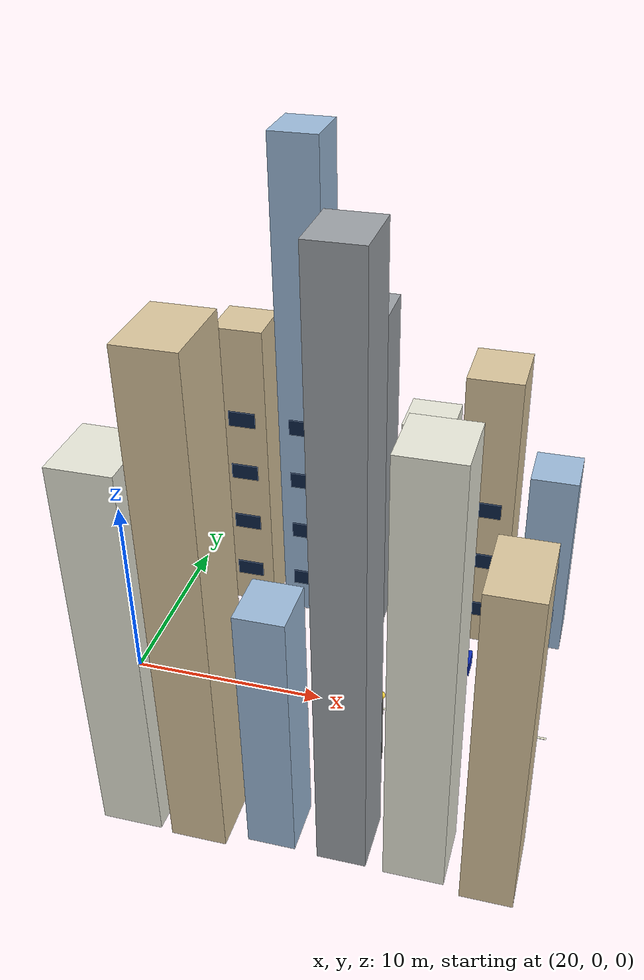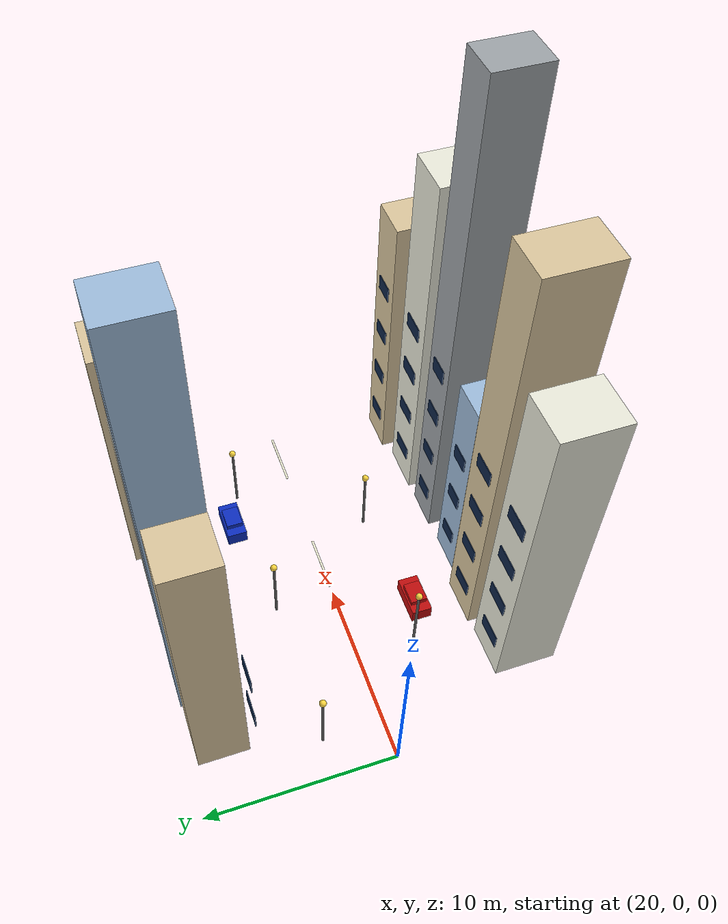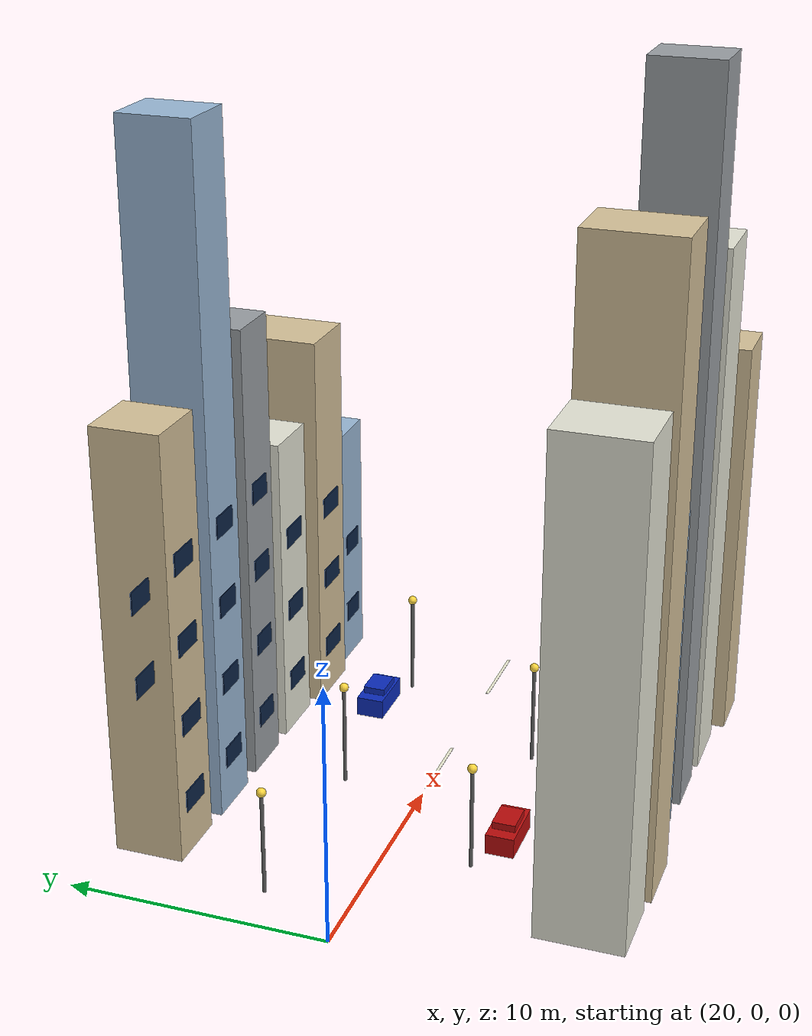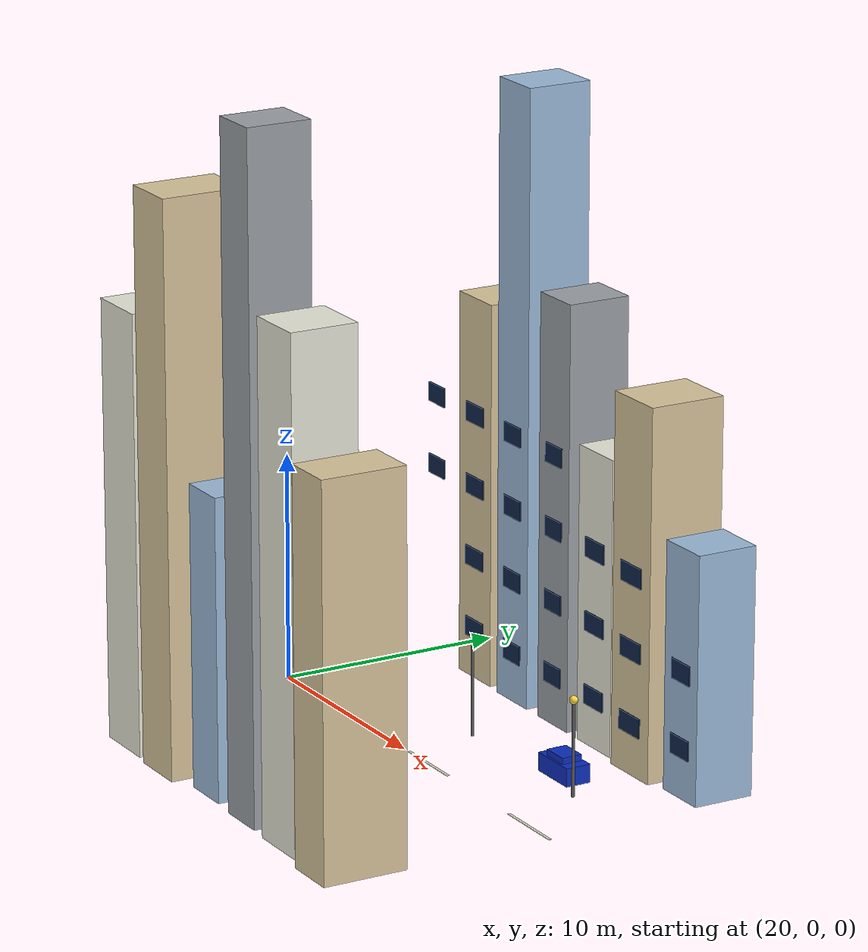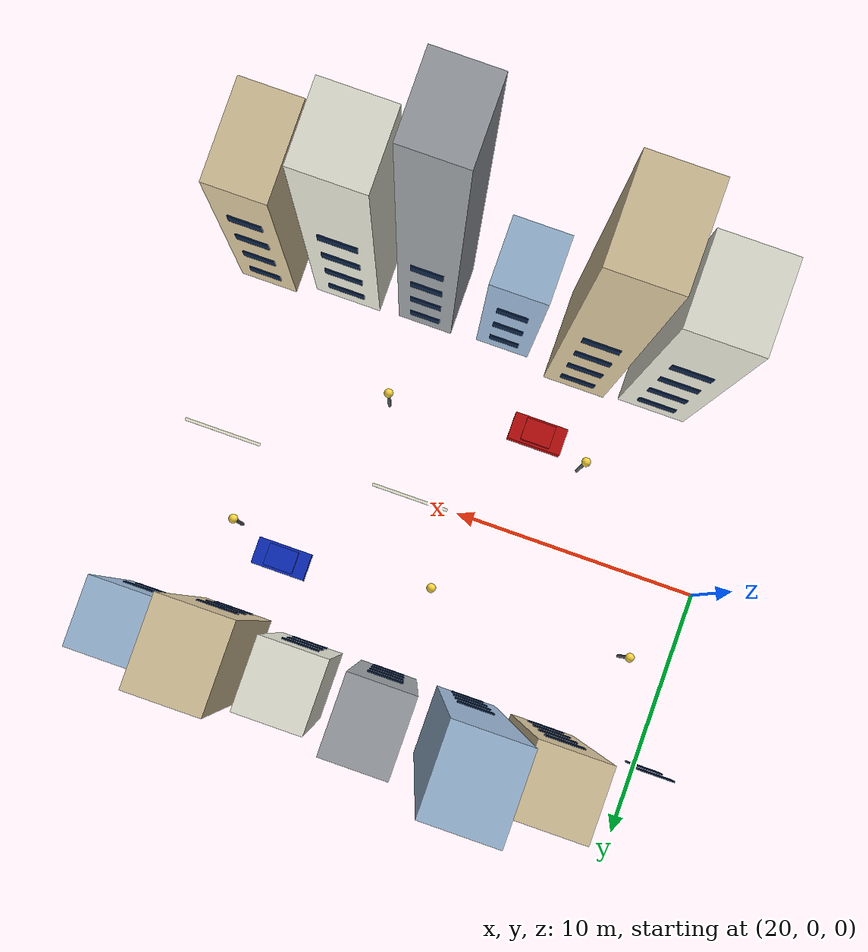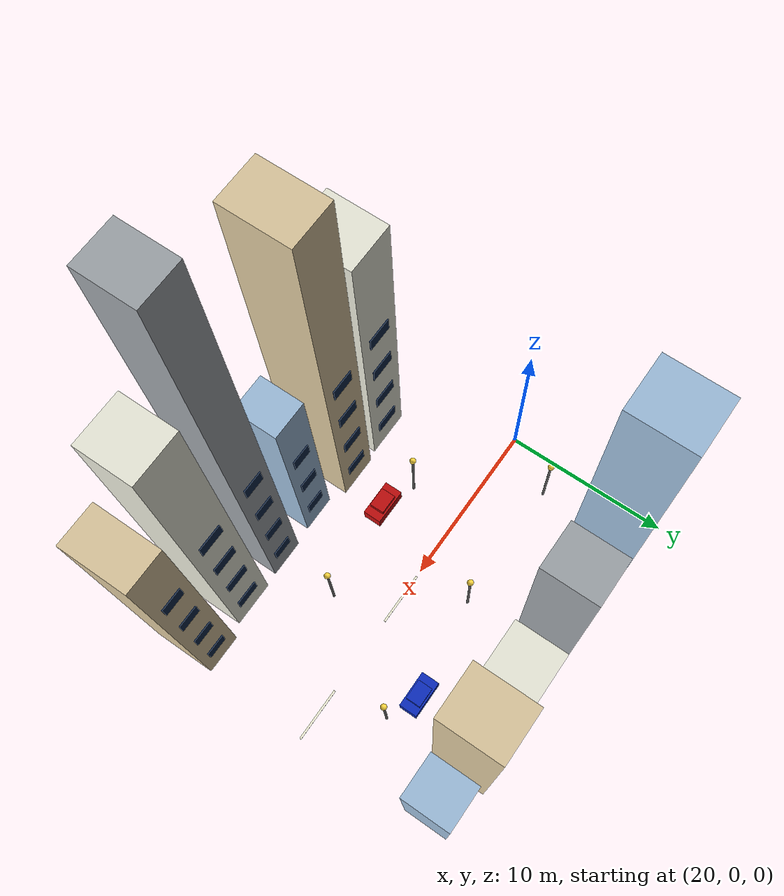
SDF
<sdf version="1.7">
 <world name="urban_street">
  <model name="white_lane_marking_08">
   <static>true</static>
   <pose>24 0 0.055 0 0 0.0</pose>
   <link name="link">
    <collision name="collision"><geometry><box><size>3.2 0.12 0.02</size></box></geometry></collision>
    <visual name="visual">
     <geometry><box><size>3.2 0.12 0.02</size></box></geometry>
     <material>
      <ambient>0.95 0.95 0.85 1</ambient>
      <diffuse>0.95 0.95 0.85 1</diffuse>
      <specular>0.1 0.1 0.1 1</specular>
     </material>
    </visual>
   </link>
  </model>
  <model name="white_lane_marking_09">
   <static>true</static>
   <pose>32 0 0.055 0 0 0.0</pose>
   <link name="link">
    <collision name="collision"><geometry><box><size>3.2 0.12 0.02</size></box></geometry></collision>
    <visual name="visual">
     <geometry><box><size>3.2 0.12 0.02</size></box></geometry>
     <material>
      <ambient>0.95 0.95 0.85 1</ambient>
      <diffuse>0.95 0.95 0.85 1</diffuse>
      <specular>0.1 0.1 0.1 1</specular>
     </material>
    </visual>
   </link>
  </model>
  <model name="white_lane_marking_10">
   <static>true</static>
   <pose>40 0 0.055 0 0 0.0</pose>
   <link name="link">
    <collision name="collision"><geometry><box><size>3.2 0.12 0.02</size></box></geometry></collision>
    <visual name="visual">
     <geometry><box><size>3.2 0.12 0.02</size></box></geometry>
     <material>
      <ambient>0.95 0.95 0.85 1</ambient>
      <diffuse>0.95 0.95 0.85 1</diffuse>
      <specular>0.1 0.1 0.1 1</specular>
     </material>
    </visual>
   </link>
  </model>
  <model name="building_facade_21">
   <static>true</static>
   <pose>24.0 -8.2 9.46 0 0 0.0</pose>
   <link name="link">
    <collision name="collision"><geometry><box><size>2.79 3.33 18.92</size></box></geometry></collision>
    <visual name="visual">
     <geometry><box><size>2.79 3.33 18.92</size></box></geometry>
     <material>
      <ambient>0.92 0.92 0.86 1</ambient>
      <diffuse>0.92 0.92 0.86 1</diffuse>
      <specular>0.1 0.1 0.1 1</specular>
     </material>
    </visual>
   </link>
  </model>
  <model name="building_facade_21_window_0">
   <static>true</static>
   <pose>24.0 -6.5 2.2 0 0 0.0</pose>
   <link name="link">
    <collision name="collision"><geometry><box><size>1.54 0.05 0.85</size></box></geometry></collision>
    <visual name="visual">
     <geometry><box><size>1.54 0.05 0.85</size></box></geometry>
     <material>
      <ambient>0.05 0.14 0.28 1</ambient>
      <diffuse>0.05 0.14 0.28 1</diffuse>
      <specular>0.1 0.1 0.1 1</specular>
     </material>
    </visual>
   </link>
  </model>
  <model name="building_facade_21_window_1">
   <static>true</static>
   <pose>24.0 -6.5 5.4 0 0 0.0</pose>
   <link name="link">
    <collision name="collision"><geometry><box><size>1.54 0.05 0.85</size></box></geometry></collision>
    <visual name="visual">
     <geometry><box><size>1.54 0.05 0.85</size></box></geometry>
     <material>
      <ambient>0.05 0.14 0.28 1</ambient>
      <diffuse>0.05 0.14 0.28 1</diffuse>
      <specular>0.1 0.1 0.1 1</specular>
     </material>
    </visual>
   </link>
  </model>
  <model name="building_facade_21_window_2">
   <static>true</static>
   <pose>24.0 -6.5 8.6 0 0 0.0</pose>
   <link name="link">
    <collision name="collision"><geometry><box><size>1.54 0.05 0.85</size></box></geometry></collision>
    <visual name="visual">
     <geometry><box><size>1.54 0.05 0.85</size></box></geometry>
     <material>
      <ambient>0.05 0.14 0.28 1</ambient>
      <diffuse>0.05 0.14 0.28 1</diffuse>
      <specular>0.1 0.1 0.1 1</specular>
     </material>
    </visual>
   </link>
  </model>
  <model name="building_facade_21_window_3">
   <static>true</static>
   <pose>24.0 -6.5 11.8 0 0 0.0</pose>
   <link name="link">
    <collision name="collision"><geometry><box><size>1.54 0.05 0.85</size></box></geometry></collision>
    <visual name="visual">
     <geometry><box><size>1.54 0.05 0.85</size></box></geometry>
     <material>
      <ambient>0.05 0.14 0.28 1</ambient>
      <diffuse>0.05 0.14 0.28 1</diffuse>
      <specular>0.1 0.1 0.1 1</specular>
     </material>
    </visual>
   </link>
  </model>
  <model name="building_facade_22">
   <static>true</static>
   <pose>27.25 -8.2 12.2 0 0 0.0</pose>
   <link name="link">
    <collision name="collision"><geometry><box><size>2.55 3.6 24.4</size></box></geometry></collision>
    <visual name="visual">
     <geometry><box><size>2.55 3.6 24.4</size></box></geometry>
     <material>
      <ambient>0.86 0.78 0.62 1</ambient>
      <diffuse>0.86 0.78 0.62 1</diffuse>
      <specular>0.1 0.1 0.1 1</specular>
     </material>
    </visual>
   </link>
  </model>
  <model name="building_facade_22_window_0">
   <static>true</static>
   <pose>27.25 -6.37 2.2 0 0 0.0</pose>
   <link name="link">
    <collision name="collision"><geometry><box><size>1.4 0.05 0.85</size></box></geometry></collision>
    <visual name="visual">
     <geometry><box><size>1.4 0.05 0.85</size></box></geometry>
     <material>
      <ambient>0.05 0.14 0.28 1</ambient>
      <diffuse>0.05 0.14 0.28 1</diffuse>
      <specular>0.1 0.1 0.1 1</specular>
     </material>
    </visual>
   </link>
  </model>
  <model name="building_facade_22_window_1">
   <static>true</static>
   <pose>27.25 -6.37 5.4 0 0 0.0</pose>
   <link name="link">
    <collision name="collision"><geometry><box><size>1.4 0.05 0.85</size></box></geometry></collision>
    <visual name="visual">
     <geometry><box><size>1.4 0.05 0.85</size></box></geometry>
     <material>
      <ambient>0.05 0.14 0.28 1</ambient>
      <diffuse>0.05 0.14 0.28 1</diffuse>
      <specular>0.1 0.1 0.1 1</specular>
     </material>
    </visual>
   </link>
  </model>
  <model name="building_facade_22_window_2">
   <static>true</static>
   <pose>27.25 -6.37 8.6 0 0 0.0</pose>
   <link name="link">
    <collision name="collision"><geometry><box><size>1.4 0.05 0.85</size></box></geometry></collision>
    <visual name="visual">
     <geometry><box><size>1.4 0.05 0.85</size></box></geometry>
     <material>
      <ambient>0.05 0.14 0.28 1</ambient>
      <diffuse>0.05 0.14 0.28 1</diffuse>
      <specular>0.1 0.1 0.1 1</specular>
     </material>
    </visual>
   </link>
  </model>
  <model name="building_facade_22_window_3">
   <static>true</static>
   <pose>27.25 -6.37 11.8 0 0 0.0</pose>
   <link name="link">
    <collision name="collision"><geometry><box><size>1.4 0.05 0.85</size></box></geometry></collision>
    <visual name="visual">
     <geometry><box><size>1.4 0.05 0.85</size></box></geometry>
     <material>
      <ambient>0.05 0.14 0.28 1</ambient>
      <diffuse>0.05 0.14 0.28 1</diffuse>
      <specular>0.1 0.1 0.1 1</specular>
     </material>
    </visual>
   </link>
  </model>
  <model name="building_facade_23">
   <static>true</static>
   <pose>30.5 -8.2 6.44 0 0 0.0</pose>
   <link name="link">
    <collision name="collision"><geometry><box><size>2.18 2.54 12.89</size></box></geometry></collision>
    <visual name="visual">
     <geometry><box><size>2.18 2.54 12.89</size></box></geometry>
     <material>
      <ambient>0.62 0.74 0.86 1</ambient>
      <diffuse>0.62 0.74 0.86 1</diffuse>
      <specular>0.1 0.1 0.1 1</specular>
     </material>
    </visual>
   </link>
  </model>
  <model name="building_facade_23_window_0">
   <static>true</static>
   <pose>30.5 -6.9 2.2 0 0 0.0</pose>
   <link name="link">
    <collision name="collision"><geometry><box><size>1.2 0.05 0.85</size></box></geometry></collision>
    <visual name="visual">
     <geometry><box><size>1.2 0.05 0.85</size></box></geometry>
     <material>
      <ambient>0.05 0.14 0.28 1</ambient>
      <diffuse>0.05 0.14 0.28 1</diffuse>
      <specular>0.1 0.1 0.1 1</specular>
     </material>
    </visual>
   </link>
  </model>
  <model name="building_facade_23_window_1">
   <static>true</static>
   <pose>30.5 -6.9 5.4 0 0 0.0</pose>
   <link name="link">
    <collision name="collision"><geometry><box><size>1.2 0.05 0.85</size></box></geometry></collision>
    <visual name="visual">
     <geometry><box><size>1.2 0.05 0.85</size></box></geometry>
     <material>
      <ambient>0.05 0.14 0.28 1</ambient>
      <diffuse>0.05 0.14 0.28 1</diffuse>
      <specular>0.1 0.1 0.1 1</specular>
     </material>
    </visual>
   </link>
  </model>
  <model name="building_facade_23_window_2">
   <static>true</static>
   <pose>30.5 -6.9 8.6 0 0 0.0</pose>
   <link name="link">
    <collision name="collision"><geometry><box><size>1.2 0.05 0.85</size></box></geometry></collision>
    <visual name="visual">
     <geometry><box><size>1.2 0.05 0.85</size></box></geometry>
     <material>
      <ambient>0.05 0.14 0.28 1</ambient>
      <diffuse>0.05 0.14 0.28 1</diffuse>
      <specular>0.1 0.1 0.1 1</specular>
     </material>
    </visual>
   </link>
  </model>
  <model name="building_facade_24">
   <static>true</static>
   <pose>33.75 -8.2 14.29 0 0 0.0</pose>
   <link name="link">
    <collision name="collision"><geometry><box><size>2.21 2.77 28.57</size></box></geometry></collision>
    <visual name="visual">
     <geometry><box><size>2.21 2.77 28.57</size></box></geometry>
     <material>
      <ambient>0.62 0.64 0.66 1</ambient>
      <diffuse>0.62 0.64 0.66 1</diffuse>
      <specular>0.1 0.1 0.1 1</specular>
     </material>
    </visual>
   </link>
  </model>
  <model name="building_facade_24_window_0">
   <static>true</static>
   <pose>33.75 -6.78 2.2 0 0 0.0</pose>
   <link name="link">
    <collision name="collision"><geometry><box><size>1.22 0.05 0.85</size></box></geometry></collision>
    <visual name="visual">
     <geometry><box><size>1.22 0.05 0.85</size></box></geometry>
     <material>
      <ambient>0.05 0.14 0.28 1</ambient>
      <diffuse>0.05 0.14 0.28 1</diffuse>
      <specular>0.1 0.1 0.1 1</specular>
     </material>
    </visual>
   </link>
  </model>
  <model name="building_facade_24_window_1">
   <static>true</static>
   <pose>33.75 -6.78 5.4 0 0 0.0</pose>
   <link name="link">
    <collision name="collision"><geometry><box><size>1.22 0.05 0.85</size></box></geometry></collision>
    <visual name="visual">
     <geometry><box><size>1.22 0.05 0.85</size></box></geometry>
     <material>
      <ambient>0.05 0.14 0.28 1</ambient>
      <diffuse>0.05 0.14 0.28 1</diffuse>
      <specular>0.1 0.1 0.1 1</specular>
     </material>
    </visual>
   </link>
  </model>
  <model name="building_facade_24_window_2">
   <static>true</static>
   <pose>33.75 -6.78 8.6 0 0 0.0</pose>
   <link name="link">
    <collision name="collision"><geometry><box><size>1.22 0.05 0.85</size></box></geometry></collision>
    <visual name="visual">
     <geometry><box><size>1.22 0.05 0.85</size></box></geometry>
     <material>
      <ambient>0.05 0.14 0.28 1</ambient>
      <diffuse>0.05 0.14 0.28 1</diffuse>
      <specular>0.1 0.1 0.1 1</specular>
     </material>
    </visual>
   </link>
  </model>
  <model name="building_facade_24_window_3">
   <static>true</static>
   <pose>33.75 -6.78 11.8 0 0 0.0</pose>
   <link name="link">
    <collision name="collision"><geometry><box><size>1.22 0.05 0.85</size></box></geometry></collision>
    <visual name="visual">
     <geometry><box><size>1.22 0.05 0.85</size></box></geometry>
     <material>
      <ambient>0.05 0.14 0.28 1</ambient>
      <diffuse>0.05 0.14 0.28 1</diffuse>
      <specular>0.1 0.1 0.1 1</specular>
     </material>
    </visual>
   </link>
  </model>
  <model name="building_facade_25">
   <static>true</static>
   <pose>37.0 -8.2 10.69 0 0 0.0</pose>
   <link name="link">
    <collision name="collision"><geometry><box><size>2.7 2.91 21.39</size></box></geometry></collision>
    <visual name="visual">
     <geometry><box><size>2.7 2.91 21.39</size></box></geometry>
     <material>
      <ambient>0.92 0.92 0.86 1</ambient>
      <diffuse>0.92 0.92 0.86 1</diffuse>
      <specular>0.1 0.1 0.1 1</specular>
     </material>
    </visual>
   </link>
  </model>
  <model name="building_facade_25_window_0">
   <static>true</static>
   <pose>37.0 -6.72 2.2 0 0 0.0</pose>
   <link name="link">
    <collision name="collision"><geometry><box><size>1.49 0.05 0.85</size></box></geometry></collision>
    <visual name="visual">
     <geometry><box><size>1.49 0.05 0.85</size></box></geometry>
     <material>
      <ambient>0.05 0.14 0.28 1</ambient>
      <diffuse>0.05 0.14 0.28 1</diffuse>
      <specular>0.1 0.1 0.1 1</specular>
     </material>
    </visual>
   </link>
  </model>
  <model name="building_facade_25_window_1">
   <static>true</static>
   <pose>37.0 -6.72 5.4 0 0 0.0</pose>
   <link name="link">
    <collision name="collision"><geometry><box><size>1.49 0.05 0.85</size></box></geometry></collision>
    <visual name="visual">
     <geometry><box><size>1.49 0.05 0.85</size></box></geometry>
     <material>
      <ambient>0.05 0.14 0.28 1</ambient>
      <diffuse>0.05 0.14 0.28 1</diffuse>
      <specular>0.1 0.1 0.1 1</specular>
     </material>
    </visual>
   </link>
  </model>
  <model name="building_facade_25_window_2">
   <static>true</static>
   <pose>37.0 -6.72 8.6 0 0 0.0</pose>
   <link name="link">
    <collision name="collision"><geometry><box><size>1.49 0.05 0.85</size></box></geometry></collision>
    <visual name="visual">
     <geometry><box><size>1.49 0.05 0.85</size></box></geometry>
     <material>
      <ambient>0.05 0.14 0.28 1</ambient>
      <diffuse>0.05 0.14 0.28 1</diffuse>
      <specular>0.1 0.1 0.1 1</specular>
     </material>
    </visual>
   </link>
  </model>
  <model name="building_facade_25_window_3">
   <static>true</static>
   <pose>37.0 -6.72 11.8 0 0 0.0</pose>
   <link name="link">
    <collision name="collision"><geometry><box><size>1.49 0.05 0.85</size></box></geometry></collision>
    <visual name="visual">
     <geometry><box><size>1.49 0.05 0.85</size></box></geometry>
     <material>
      <ambient>0.05 0.14 0.28 1</ambient>
      <diffuse>0.05 0.14 0.28 1</diffuse>
      <specular>0.1 0.1 0.1 1</specular>
     </material>
    </visual>
   </link>
  </model>
  <model name="building_facade_26">
   <static>true</static>
   <pose>40.25 -8.2 8.24 0 0 0.0</pose>
   <link name="link">
    <collision name="collision"><geometry><box><size>2.32 3.69 16.47</size></box></geometry></collision>
    <visual name="visual">
     <geometry><box><size>2.32 3.69 16.47</size></box></geometry>
     <material>
      <ambient>0.86 0.78 0.62 1</ambient>
      <diffuse>0.86 0.78 0.62 1</diffuse>
      <specular>0.1 0.1 0.1 1</specular>
     </material>
    </visual>
   </link>
  </model>
  <model name="building_facade_26_window_0">
   <static>true</static>
   <pose>40.25 -6.33 2.2 0 0 0.0</pose>
   <link name="link">
    <collision name="collision"><geometry><box><size>1.27 0.05 0.85</size></box></geometry></collision>
    <visual name="visual">
     <geometry><box><size>1.27 0.05 0.85</size></box></geometry>
     <material>
      <ambient>0.05 0.14 0.28 1</ambient>
      <diffuse>0.05 0.14 0.28 1</diffuse>
      <specular>0.1 0.1 0.1 1</specular>
     </material>
    </visual>
   </link>
  </model>
  <model name="building_facade_26_window_1">
   <static>true</static>
   <pose>40.25 -6.33 5.4 0 0 0.0</pose>
   <link name="link">
    <collision name="collision"><geometry><box><size>1.27 0.05 0.85</size></box></geometry></collision>
    <visual name="visual">
     <geometry><box><size>1.27 0.05 0.85</size></box></geometry>
     <material>
      <ambient>0.05 0.14 0.28 1</ambient>
      <diffuse>0.05 0.14 0.28 1</diffuse>
      <specular>0.1 0.1 0.1 1</specular>
     </material>
    </visual>
   </link>
  </model>
  <model name="building_facade_26_window_2">
   <static>true</static>
   <pose>40.25 -6.33 8.6 0 0 0.0</pose>
   <link name="link">
    <collision name="collision"><geometry><box><size>1.27 0.05 0.85</size></box></geometry></collision>
    <visual name="visual">
     <geometry><box><size>1.27 0.05 0.85</size></box></geometry>
     <material>
      <ambient>0.05 0.14 0.28 1</ambient>
      <diffuse>0.05 0.14 0.28 1</diffuse>
      <specular>0.1 0.1 0.1 1</specular>
     </material>
    </visual>
   </link>
  </model>
  <model name="building_facade_26_window_3">
   <static>true</static>
   <pose>40.25 -6.33 11.8 0 0 0.0</pose>
   <link name="link">
    <collision name="collision"><geometry><box><size>1.27 0.05 0.85</size></box></geometry></collision>
    <visual name="visual">
     <geometry><box><size>1.27 0.05 0.85</size></box></geometry>
     <material>
      <ambient>0.05 0.14 0.28 1</ambient>
      <diffuse>0.05 0.14 0.28 1</diffuse>
      <specular>0.1 0.1 0.1 1</specular>
     </material>
    </visual>
   </link>
  </model>
  <model name="building_facade_46_window_2">
   <static>true</static>
   <pose>20.75 6.88 8.6 0 0 0.0</pose>
   <link name="link">
    <collision name="collision"><geometry><box><size>1.31 0.05 0.85</size></box></geometry></collision>
    <visual name="visual">
     <geometry><box><size>1.31 0.05 0.85</size></box></geometry>
     <material>
      <ambient>0.05 0.14 0.28 1</ambient>
      <diffuse>0.05 0.14 0.28 1</diffuse>
      <specular>0.1 0.1 0.1 1</specular>
     </material>
    </visual>
   </link>
  </model>
  <model name="building_facade_46_window_3">
   <static>true</static>
   <pose>20.75 6.88 11.8 0 0 0.0</pose>
   <link name="link">
    <collision name="collision"><geometry><box><size>1.31 0.05 0.85</size></box></geometry></collision>
    <visual name="visual">
     <geometry><box><size>1.31 0.05 0.85</size></box></geometry>
     <material>
      <ambient>0.05 0.14 0.28 1</ambient>
      <diffuse>0.05 0.14 0.28 1</diffuse>
      <specular>0.1 0.1 0.1 1</specular>
     </material>
    </visual>
   </link>
  </model>
  <model name="building_facade_47">
   <static>true</static>
   <pose>24.0 8.2 8.44 0 0 0.0</pose>
   <link name="link">
    <collision name="collision"><geometry><box><size>2.61 2.67 16.88</size></box></geometry></collision>
    <visual name="visual">
     <geometry><box><size>2.61 2.67 16.88</size></box></geometry>
     <material>
      <ambient>0.86 0.78 0.62 1</ambient>
      <diffuse>0.86 0.78 0.62 1</diffuse>
      <specular>0.1 0.1 0.1 1</specular>
     </material>
    </visual>
   </link>
  </model>
  <model name="building_facade_47_window_0">
   <static>true</static>
   <pose>24.0 6.84 2.2 0 0 0.0</pose>
   <link name="link">
    <collision name="collision"><geometry><box><size>1.44 0.05 0.85</size></box></geometry></collision>
    <visual name="visual">
     <geometry><box><size>1.44 0.05 0.85</size></box></geometry>
     <material>
      <ambient>0.05 0.14 0.28 1</ambient>
      <diffuse>0.05 0.14 0.28 1</diffuse>
      <specular>0.1 0.1 0.1 1</specular>
     </material>
    </visual>
   </link>
  </model>
  <model name="building_facade_47_window_1">
   <static>true</static>
   <pose>24.0 6.84 5.4 0 0 0.0</pose>
   <link name="link">
    <collision name="collision"><geometry><box><size>1.44 0.05 0.85</size></box></geometry></collision>
    <visual name="visual">
     <geometry><box><size>1.44 0.05 0.85</size></box></geometry>
     <material>
      <ambient>0.05 0.14 0.28 1</ambient>
      <diffuse>0.05 0.14 0.28 1</diffuse>
      <specular>0.1 0.1 0.1 1</specular>
     </material>
    </visual>
   </link>
  </model>
  <model name="building_facade_47_window_2">
   <static>true</static>
   <pose>24.0 6.84 8.6 0 0 0.0</pose>
   <link name="link">
    <collision name="collision"><geometry><box><size>1.44 0.05 0.85</size></box></geometry></collision>
    <visual name="visual">
     <geometry><box><size>1.44 0.05 0.85</size></box></geometry>
     <material>
      <ambient>0.05 0.14 0.28 1</ambient>
      <diffuse>0.05 0.14 0.28 1</diffuse>
      <specular>0.1 0.1 0.1 1</specular>
     </material>
    </visual>
   </link>
  </model>
  <model name="building_facade_47_window_3">
   <static>true</static>
   <pose>24.0 6.84 11.8 0 0 0.0</pose>
   <link name="link">
    <collision name="collision"><geometry><box><size>1.44 0.05 0.85</size></box></geometry></collision>
    <visual name="visual">
     <geometry><box><size>1.44 0.05 0.85</size></box></geometry>
     <material>
      <ambient>0.05 0.14 0.28 1</ambient>
      <diffuse>0.05 0.14 0.28 1</diffuse>
      <specular>0.1 0.1 0.1 1</specular>
     </material>
    </visual>
   </link>
  </model>
  <model name="building_facade_48">
   <static>true</static>
   <pose>27.25 8.2 13.41 0 0 0.0</pose>
   <link name="link">
    <collision name="collision"><geometry><box><size>2.44 2.84 26.81</size></box></geometry></collision>
    <visual name="visual">
     <geometry><box><size>2.44 2.84 26.81</size></box></geometry>
     <material>
      <ambient>0.62 0.74 0.86 1</ambient>
      <diffuse>0.62 0.74 0.86 1</diffuse>
      <specular>0.1 0.1 0.1 1</specular>
     </material>
    </visual>
   </link>
  </model>
  <model name="building_facade_48_window_0">
   <static>true</static>
   <pose>27.25 6.75 2.2 0 0 0.0</pose>
   <link name="link">
    <collision name="collision"><geometry><box><size>1.34 0.05 0.85</size></box></geometry></collision>
    <visual name="visual">
     <geometry><box><size>1.34 0.05 0.85</size></box></geometry>
     <material>
      <ambient>0.05 0.14 0.28 1</ambient>
      <diffuse>0.05 0.14 0.28 1</diffuse>
      <specular>0.1 0.1 0.1 1</specular>
     </material>
    </visual>
   </link>
  </model>
  <model name="building_facade_48_window_1">
   <static>true</static>
   <pose>27.25 6.75 5.4 0 0 0.0</pose>
   <link name="link">
    <collision name="collision"><geometry><box><size>1.34 0.05 0.85</size></box></geometry></collision>
    <visual name="visual">
     <geometry><box><size>1.34 0.05 0.85</size></box></geometry>
     <material>
      <ambient>0.05 0.14 0.28 1</ambient>
      <diffuse>0.05 0.14 0.28 1</diffuse>
      <specular>0.1 0.1 0.1 1</specular>
     </material>
    </visual>
   </link>
  </model>
  <model name="building_facade_48_window_2">
   <static>true</static>
   <pose>27.25 6.75 8.6 0 0 0.0</pose>
   <link name="link">
    <collision name="collision"><geometry><box><size>1.34 0.05 0.85</size></box></geometry></collision>
    <visual name="visual">
     <geometry><box><size>1.34 0.05 0.85</size></box></geometry>
     <material>
      <ambient>0.05 0.14 0.28 1</ambient>
      <diffuse>0.05 0.14 0.28 1</diffuse>
      <specular>0.1 0.1 0.1 1</specular>
     </material>
    </visual>
   </link>
  </model>
  <model name="building_facade_48_window_3">
   <static>true</static>
   <pose>27.25 6.75 11.8 0 0 0.0</pose>
   <link name="link">
    <collision name="collision"><geometry><box><size>1.34 0.05 0.85</size></box></geometry></collision>
    <visual name="visual">
     <geometry><box><size>1.34 0.05 0.85</size></box></geometry>
     <material>
      <ambient>0.05 0.14 0.28 1</ambient>
      <diffuse>0.05 0.14 0.28 1</diffuse>
      <specular>0.1 0.1 0.1 1</specular>
     </material>
    </visual>
   </link>
  </model>
  <model name="building_facade_49">
   <static>true</static>
   <pose>30.5 8.2 9.24 0 0 0.0</pose>
   <link name="link">
    <collision name="collision"><geometry><box><size>2.34 2.78 18.48</size></box></geometry></collision>
    <visual name="visual">
     <geometry><box><size>2.34 2.78 18.48</size></box></geometry>
     <material>
      <ambient>0.62 0.64 0.66 1</ambient>
      <diffuse>0.62 0.64 0.66 1</diffuse>
      <specular>0.1 0.1 0.1 1</specular>
     </material>
    </visual>
   </link>
  </model>
  <model name="building_facade_49_window_0">
   <static>true</static>
   <pose>30.5 6.78 2.2 0 0 0.0</pose>
   <link name="link">
    <collision name="collision"><geometry><box><size>1.29 0.05 0.85</size></box></geometry></collision>
    <visual name="visual">
     <geometry><box><size>1.29 0.05 0.85</size></box></geometry>
     <material>
      <ambient>0.05 0.14 0.28 1</ambient>
      <diffuse>0.05 0.14 0.28 1</diffuse>
      <specular>0.1 0.1 0.1 1</specular>
     </material>
    </visual>
   </link>
  </model>
  <model name="building_facade_49_window_1">
   <static>true</static>
   <pose>30.5 6.78 5.4 0 0 0.0</pose>
   <link name="link">
    <collision name="collision"><geometry><box><size>1.29 0.05 0.85</size></box></geometry></collision>
    <visual name="visual">
     <geometry><box><size>1.29 0.05 0.85</size></box></geometry>
     <material>
      <ambient>0.05 0.14 0.28 1</ambient>
      <diffuse>0.05 0.14 0.28 1</diffuse>
      <specular>0.1 0.1 0.1 1</specular>
     </material>
    </visual>
   </link>
  </model>
  <model name="building_facade_49_window_2">
   <static>true</static>
   <pose>30.5 6.78 8.6 0 0 0.0</pose>
   <link name="link">
    <collision name="collision"><geometry><box><size>1.29 0.05 0.85</size></box></geometry></collision>
    <visual name="visual">
     <geometry><box><size>1.29 0.05 0.85</size></box></geometry>
     <material>
      <ambient>0.05 0.14 0.28 1</ambient>
      <diffuse>0.05 0.14 0.28 1</diffuse>
      <specular>0.1 0.1 0.1 1</specular>
     </material>
    </visual>
   </link>
  </model>
  <model name="building_facade_49_window_3">
   <static>true</static>
   <pose>30.5 6.78 11.8 0 0 0.0</pose>
   <link name="link">
    <collision name="collision"><geometry><box><size>1.29 0.05 0.85</size></box></geometry></collision>
    <visual name="visual">
     <geometry><box><size>1.29 0.05 0.85</size></box></geometry>
     <material>
      <ambient>0.05 0.14 0.28 1</ambient>
      <diffuse>0.05 0.14 0.28 1</diffuse>
      <specular>0.1 0.1 0.1 1</specular>
     </material>
    </visual>
   </link>
  </model>
  <model name="building_facade_50">
   <static>true</static>
   <pose>33.75 8.2 6.4 0 0 0.0</pose>
   <link name="link">
    <collision name="collision"><geometry><box><size>2.58 2.76 12.79</size></box></geometry></collision>
    <visual name="visual">
     <geometry><box><size>2.58 2.76 12.79</size></box></geometry>
     <material>
      <ambient>0.92 0.92 0.86 1</ambient>
      <diffuse>0.92 0.92 0.86 1</diffuse>
      <specular>0.1 0.1 0.1 1</specular>
     </material>
    </visual>
   </link>
  </model>
  <model name="building_facade_50_window_0">
   <static>true</static>
   <pose>33.75 6.79 2.2 0 0 0.0</pose>
   <link name="link">
    <collision name="collision"><geometry><box><size>1.42 0.05 0.85</size></box></geometry></collision>
    <visual name="visual">
     <geometry><box><size>1.42 0.05 0.85</size></box></geometry>
     <material>
      <ambient>0.05 0.14 0.28 1</ambient>
      <diffuse>0.05 0.14 0.28 1</diffuse>
      <specular>0.1 0.1 0.1 1</specular>
     </material>
    </visual>
   </link>
  </model>
  <model name="building_facade_50_window_1">
   <static>true</static>
   <pose>33.75 6.79 5.4 0 0 0.0</pose>
   <link name="link">
    <collision name="collision"><geometry><box><size>1.42 0.05 0.85</size></box></geometry></collision>
    <visual name="visual">
     <geometry><box><size>1.42 0.05 0.85</size></box></geometry>
     <material>
      <ambient>0.05 0.14 0.28 1</ambient>
      <diffuse>0.05 0.14 0.28 1</diffuse>
      <specular>0.1 0.1 0.1 1</specular>
     </material>
    </visual>
   </link>
  </model>
  <model name="building_facade_50_window_2">
   <static>true</static>
   <pose>33.75 6.79 8.6 0 0 0.0</pose>
   <link name="link">
    <collision name="collision"><geometry><box><size>1.42 0.05 0.85</size></box></geometry></collision>
    <visual name="visual">
     <geometry><box><size>1.42 0.05 0.85</size></box></geometry>
     <material>
      <ambient>0.05 0.14 0.28 1</ambient>
      <diffuse>0.05 0.14 0.28 1</diffuse>
      <specular>0.1 0.1 0.1 1</specular>
     </material>
    </visual>
   </link>
  </model>
  <model name="building_facade_51">
   <static>true</static>
   <pose>37.0 8.2 7.98 0 0 0.0</pose>
   <link name="link">
    <collision name="collision"><geometry><box><size>2.8 3.34 15.95</size></box></geometry></collision>
    <visual name="visual">
     <geometry><box><size>2.8 3.34 15.95</size></box></geometry>
     <material>
      <ambient>0.86 0.78 0.62 1</ambient>
      <diffuse>0.86 0.78 0.62 1</diffuse>
      <specular>0.1 0.1 0.1 1</specular>
     </material>
    </visual>
   </link>
  </model>
  <model name="building_facade_51_window_0">
   <static>true</static>
   <pose>37.0 6.5 2.2 0 0 0.0</pose>
   <link name="link">
    <collision name="collision"><geometry><box><size>1.54 0.05 0.85</size></box></geometry></collision>
    <visual name="visual">
     <geometry><box><size>1.54 0.05 0.85</size></box></geometry>
     <material>
      <ambient>0.05 0.14 0.28 1</ambient>
      <diffuse>0.05 0.14 0.28 1</diffuse>
      <specular>0.1 0.1 0.1 1</specular>
     </material>
    </visual>
   </link>
  </model>
  <model name="building_facade_51_window_1">
   <static>true</static>
   <pose>37.0 6.5 5.4 0 0 0.0</pose>
   <link name="link">
    <collision name="collision"><geometry><box><size>1.54 0.05 0.85</size></box></geometry></collision>
    <visual name="visual">
     <geometry><box><size>1.54 0.05 0.85</size></box></geometry>
     <material>
      <ambient>0.05 0.14 0.28 1</ambient>
      <diffuse>0.05 0.14 0.28 1</diffuse>
      <specular>0.1 0.1 0.1 1</specular>
     </material>
    </visual>
   </link>
  </model>
  <model name="building_facade_51_window_2">
   <static>true</static>
   <pose>37.0 6.5 8.6 0 0 0.0</pose>
   <link name="link">
    <collision name="collision"><geometry><box><size>1.54 0.05 0.85</size></box></geometry></collision>
    <visual name="visual">
     <geometry><box><size>1.54 0.05 0.85</size></box></geometry>
     <material>
      <ambient>0.05 0.14 0.28 1</ambient>
      <diffuse>0.05 0.14 0.28 1</diffuse>
      <specular>0.1 0.1 0.1 1</specular>
     </material>
    </visual>
   </link>
  </model>
  <model name="building_facade_52">
   <static>true</static>
   <pose>40.25 8.2 5.31 0 0 0.0</pose>
   <link name="link">
    <collision name="collision"><geometry><box><size>2.41 2.66 10.62</size></box></geometry></collision>
    <visual name="visual">
     <geometry><box><size>2.41 2.66 10.62</size></box></geometry>
     <material>
      <ambient>0.62 0.74 0.86 1</ambient>
      <diffuse>0.62 0.74 0.86 1</diffuse>
      <specular>0.1 0.1 0.1 1</specular>
     </material>
    </visual>
   </link>
  </model>
  <model name="building_facade_52_window_0">
   <static>true</static>
   <pose>40.25 6.84 2.2 0 0 0.0</pose>
   <link name="link">
    <collision name="collision"><geometry><box><size>1.33 0.05 0.85</size></box></geometry></collision>
    <visual name="visual">
     <geometry><box><size>1.33 0.05 0.85</size></box></geometry>
     <material>
      <ambient>0.05 0.14 0.28 1</ambient>
      <diffuse>0.05 0.14 0.28 1</diffuse>
      <specular>0.1 0.1 0.1 1</specular>
     </material>
    </visual>
   </link>
  </model>
  <model name="building_facade_52_window_1">
   <static>true</static>
   <pose>40.25 6.84 5.4 0 0 0.0</pose>
   <link name="link">
    <collision name="collision"><geometry><box><size>1.33 0.05 0.85</size></box></geometry></collision>
    <visual name="visual">
     <geometry><box><size>1.33 0.05 0.85</size></box></geometry>
     <material>
      <ambient>0.05 0.14 0.28 1</ambient>
      <diffuse>0.05 0.14 0.28 1</diffuse>
      <specular>0.1 0.1 0.1 1</specular>
     </material>
    </visual>
   </link>
  </model>
  <model name="street_pole_15">
   <static>true</static>
   <pose>22.0 3.25 2.0 0 0 0</pose>
   <link name="link">
    <collision name="collision">
     <geometry><cylinder><radius>0.07</radius><length>4.0</length></cylinder></geometry>
    </collision>
    <visual name="visual">
     <geometry><cylinder><radius>0.07</radius><length>4.0</length></cylinder></geometry>
     <material>
      <ambient>0.35 0.35 0.35 1</ambient>
      <diffuse>0.35 0.35 0.35 1</diffuse>
      <specular>0.1 0.1 0.1 1</specular>
     </material>
    </visual>
   </link>
  </model>
  <model name="lamp_head_15">
   <static>true</static>
   <pose>22.0 3.25 4.15 0 0 0</pose>
   <link name="link">
    <visual name="visual">
     <geometry><sphere><radius>0.18</radius></sphere></geometry>
     <material>
      <ambient>1.0 0.85 0.25 1</ambient>
      <diffuse>1.0 0.85 0.25 1</diffuse>
      <specular>0.1 0.1 0.1 1</specular>
     </material>
    </visual>
   </link>
  </model>
  <model name="street_pole_16">
   <static>true</static>
   <pose>26.0 -3.25 2.0 0 0 0</pose>
   <link name="link">
    <collision name="collision">
     <geometry><cylinder><radius>0.07</radius><length>4.0</length></cylinder></geometry>
    </collision>
    <visual name="visual">
     <geometry><cylinder><radius>0.07</radius><length>4.0</length></cylinder></geometry>
     <material>
      <ambient>0.35 0.35 0.35 1</ambient>
      <diffuse>0.35 0.35 0.35 1</diffuse>
      <specular>0.1 0.1 0.1 1</specular>
     </material>
    </visual>
   </link>
  </model>
  <model name="lamp_head_16">
   <static>true</static>
   <pose>26.0 -3.25 4.15 0 0 0</pose>
   <link name="link">
    <visual name="visual">
     <geometry><sphere><radius>0.18</radius></sphere></geometry>
     <material>
      <ambient>1.0 0.85 0.25 1</ambient>
      <diffuse>1.0 0.85 0.25 1</diffuse>
      <specular>0.1 0.1 0.1 1</specular>
     </material>
    </visual>
   </link>
  </model>
  <model name="street_pole_17">
   <static>true</static>
   <pose>30.0 3.25 2.0 0 0 0</pose>
   <link name="link">
    <collision name="collision">
     <geometry><cylinder><radius>0.07</radius><length>4.0</length></cylinder></geometry>
    </collision>
    <visual name="visual">
     <geometry><cylinder><radius>0.07</radius><length>4.0</length></cylinder></geometry>
     <material>
      <ambient>0.35 0.35 0.35 1</ambient>
      <diffuse>0.35 0.35 0.35 1</diffuse>
      <specular>0.1 0.1 0.1 1</specular>
     </material>
    </visual>
   </link>
  </model>
  <model name="lamp_head_17">
   <static>true</static>
   <pose>30.0 3.25 4.15 0 0 0</pose>
   <link name="link">
    <visual name="visual">
     <geometry><sphere><radius>0.18</radius></sphere></geometry>
     <material>
      <ambient>1.0 0.85 0.25 1</ambient>
      <diffuse>1.0 0.85 0.25 1</diffuse>
      <specular>0.1 0.1 0.1 1</specular>
     </material>
    </visual>
   </link>
  </model>
  <model name="street_pole_18">
   <static>true</static>
   <pose>34.0 -3.25 2.0 0 0 0</pose>
   <link name="link">
    <collision name="collision">
     <geometry><cylinder><radius>0.07</radius><length>4.0</length></cylinder></geometry>
    </collision>
    <visual name="visual">
     <geometry><cylinder><radius>0.07</radius><length>4.0</length></cylinder></geometry>
     <material>
      <ambient>0.35 0.35 0.35 1</ambient>
      <diffuse>0.35 0.35 0.35 1</diffuse>
      <specular>0.1 0.1 0.1 1</specular>
     </material>
    </visual>
   </link>
  </model>
  <model name="lamp_head_18">
   <static>true</static>
   <pose>34.0 -3.25 4.15 0 0 0</pose>
   <link name="link">
    <visual name="visual">
     <geometry><sphere><radius>0.18</radius></sphere></geometry>
     <material>
      <ambient>1.0 0.85 0.25 1</ambient>
      <diffuse>1.0 0.85 0.25 1</diffuse>
      <specular>0.1 0.1 0.1 1</specular>
     </material>
    </visual>
   </link>
  </model>
  <model name="street_pole_19">
   <static>true</static>
   <pose>38.0 3.25 2.0 0 0 0</pose>
   <link name="link">
    <collision name="collision">
     <geometry><cylinder><radius>0.07</radius><length>4.0</length></cylinder></geometry>
    </collision>
    <visual name="visual">
     <geometry><cylinder><radius>0.07</radius><length>4.0</length></cylinder></geometry>
     <material>
      <ambient>0.35 0.35 0.35 1</ambient>
      <diffuse>0.35 0.35 0.35 1</diffuse>
      <specular>0.1 0.1 0.1 1</specular>
     </material>
    </visual>
   </link>
  </model>
  <model name="lamp_head_19">
   <static>true</static>
   <pose>38.0 3.25 4.15 0 0 0</pose>
   <link name="link">
    <visual name="visual">
     <geometry><sphere><radius>0.18</radius></sphere></geometry>
     <material>
      <ambient>1.0 0.85 0.25 1</ambient>
      <diffuse>1.0 0.85 0.25 1</diffuse>
      <specular>0.1 0.1 0.1 1</specular>
     </material>
    </visual>
   </link>
  </model>
  <model name="parked_vehicle_body_08">
   <static>true</static>
   <pose>28 -4.05 0.45 0 0 0.0</pose>
   <link name="link">
    <collision name="collision"><geometry><box><size>2.2 1.1 0.8</size></box></geometry></collision>
    <visual name="visual">
     <geometry><box><size>2.2 1.1 0.8</size></box></geometry>
     <material>
      <ambient>0.75 0.05 0.05 1</ambient>
      <diffuse>0.75 0.05 0.05 1</diffuse>
      <specular>0.1 0.1 0.1 1</specular>
     </material>
    </visual>
   </link>
  </model>
  <model name="parked_vehicle_roof_08">
   <static>true</static>
   <pose>28 -4.05 0.95 0 0 0.0</pose>
   <link name="link">
    <collision name="collision"><geometry><box><size>1.2 0.9 0.35</size></box></geometry></collision>
    <visual name="visual">
     <geometry><box><size>1.2 0.9 0.35</size></box></geometry>
     <material>
      <ambient>0.75 0.05 0.05 1</ambient>
      <diffuse>0.75 0.05 0.05 1</diffuse>
      <specular>0.1 0.1 0.1 1</specular>
     </material>
    </visual>
   </link>
  </model>
  <model name="parked_vehicle_body_09">
   <static>true</static>
   <pose>36 4.05 0.45 0 0 0.0</pose>
   <link name="link">
    <collision name="collision"><geometry><box><size>2.2 1.1 0.8</size></box></geometry></collision>
    <visual name="visual">
     <geometry><box><size>2.2 1.1 0.8</size></box></geometry>
     <material>
      <ambient>0.05 0.18 0.75 1</ambient>
      <diffuse>0.05 0.18 0.75 1</diffuse>
      <specular>0.1 0.1 0.1 1</specular>
     </material>
    </visual>
   </link>
  </model>
  <model name="parked_vehicle_roof_09">
   <static>true</static>
   <pose>36 4.05 0.95 0 0 0.0</pose>
   <link name="link">
    <collision name="collision"><geometry><box><size>1.2 0.9 0.35</size></box></geometry></collision>
    <visual name="visual">
     <geometry><box><size>1.2 0.9 0.35</size></box></geometry>
     <material>
      <ambient>0.05 0.18 0.75 1</ambient>
      <diffuse>0.05 0.18 0.75 1</diffuse>
      <specular>0.1 0.1 0.1 1</specular>
     </material>
    </visual>
   </link>
  </model>
 </world>
</sdf>
